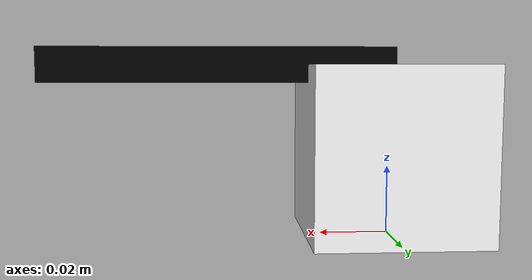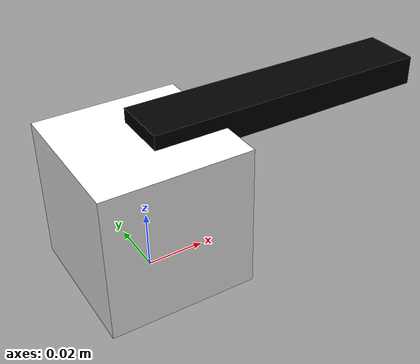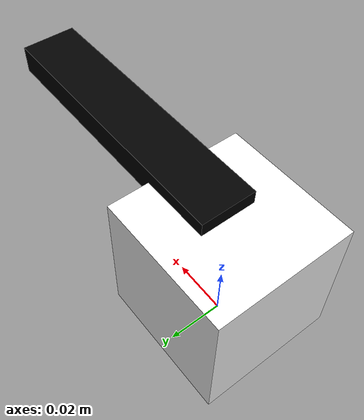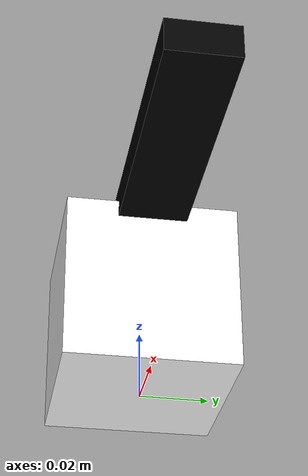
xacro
<?xml version="1.0"?>
<robot xmlns:xacro="http://www.ros.org/wiki/xacro">

    <xacro:include filename="inertial_macros.xacro" />

    <!-- Materials -->

        <material name="black">
            <color rgba="0 0 0 1"/>
        </material>

        <material name="white">
            <color rgba="1 1 1 1"/>
        </material>

    <!-- Links -->

        <link name="base_link">

        </link>

        <joint name="main_joint" type="fixed">
            <origin xyz="0 0 0"/>
            <parent link="base_link"/>
            <child link="main_link"/>
        </joint>

        <link name="main_link">
            <visual>
                <origin xyz="0 0 0.025"/>
                <geometry>
                    <box size="0.05 0.05 0.05"/>
                </geometry>
                <material name="white"/>
            </visual>
            <collision>
                <origin xyz="0 0 0.025"/>
                <geometry>
                    <box size="0.05 0.05 0.05"/>
                </geometry>
            </collision>
            <xacro:inertial_box mass="10" x="0.05" y="0.05" z="0.05">
                <origin xyz="0 0 0.025" rpy="0.0 0.0 0.0"/>
            </xacro:inertial_box>
        </link>

        <gazebo reference="main_link">
            <material>Gazebo/White</material>
        </gazebo>

        <joint name="arm_joint" type="revolute">
            <origin xyz="0 0 0.05"/>
            <parent link="main_link"/>
            <child link="arm_link"/>
            <axis xyz="0 0 1"/>
            <limit lower="0" upper="${pi}" effort="100" velocity="10"/>
        </joint>

        <link name="arm_link">
            <visual>
                <origin xyz="0.05 0 0"/>
                <geometry>
                    <box size="0.1 0.02 0.01"/>
                </geometry>
                <material name="black"/>
            </visual>
            <collision>
                <origin xyz="0.05 0 0"/>
                <geometry>
                    <box size="0.1 0.02 0.01"/>
                </geometry>
            </collision>
            <xacro:inertial_box mass="0.1" x="0.1" y="0.02" z="0.01">
                <origin xyz="0.05 0 0" rpy="0.0 0.0 0.0"/>
            </xacro:inertial_box>
        </link>

        <gazebo reference="arm_link">
            <material>Gazebo/Black</material>
        </gazebo>

</robot>
